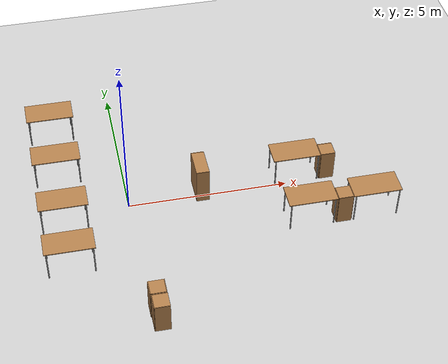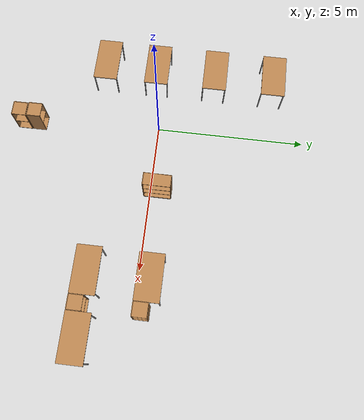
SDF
<sdf version="1.6">
 <world name="default">
  <model name="ground_plane">
   <static>1</static>
   <link name="link">
    <collision name="collision">
     <geometry><plane><normal>0 0 1</normal><size>100 100</size></plane></geometry>
     <surface><friction><ode><mu>100</mu><mu2>50</mu2></ode></friction></surface>
    </collision>
    <visual name="visual">
     <cast_shadows>0</cast_shadows>
     <geometry><plane><normal>0 0 1</normal><size>100 100</size></plane></geometry>
     <material>
      <script><uri>file://media/materials/scripts/gazebo.material</uri><name>Gazebo/Grey</name></script>
     </material>
    </visual>
   </link>
  </model>
  <model name="table_clone">
   <static>1</static>
   <link name="link">
    <collision name="surface">
     <pose>0 0 1 0 -0 0</pose>
     <geometry><box><size>1.5 0.8 0.03</size></box></geometry>
     <surface><friction><ode><mu>0.6</mu><mu2>0.6</mu2></ode></friction></surface>
    </collision>
    <visual name="visual1">
     <pose>0 0 1 0 -0 0</pose>
     <geometry><box><size>1.5 0.8 0.03</size></box></geometry>
     <material>
      <script><uri>file://media/materials/scripts/gazebo.material</uri><name>Gazebo/Wood</name></script>
     </material>
    </visual>
    <collision name="front_left_leg">
     <pose>0.68 0.38 0.5 0 -0 0</pose>
     <geometry><cylinder><radius>0.02</radius><length>1</length></cylinder></geometry>
    </collision>
    <visual name="front_left_leg">
     <pose>0.68 0.38 0.5 0 -0 0</pose>
     <geometry><cylinder><radius>0.02</radius><length>1</length></cylinder></geometry>
     <material>
      <script><uri>file://media/materials/scripts/gazebo.material</uri><name>Gazebo/Grey</name></script>
     </material>
    </visual>
    <collision name="front_right_leg">
     <pose>0.68 -0.38 0.5 0 -0 0</pose>
     <geometry><cylinder><radius>0.02</radius><length>1</length></cylinder></geometry>
    </collision>
    <visual name="front_right_leg">
     <pose>0.68 -0.38 0.5 0 -0 0</pose>
     <geometry><cylinder><radius>0.02</radius><length>1</length></cylinder></geometry>
     <material>
      <script><uri>file://media/materials/scripts/gazebo.material</uri><name>Gazebo/Grey</name></script>
     </material>
    </visual>
    <collision name="back_right_leg">
     <pose>-0.68 -0.38 0.5 0 -0 0</pose>
     <geometry><cylinder><radius>0.02</radius><length>1</length></cylinder></geometry>
    </collision>
    <visual name="back_right_leg">
     <pose>-0.68 -0.38 0.5 0 -0 0</pose>
     <geometry><cylinder><radius>0.02</radius><length>1</length></cylinder></geometry>
     <material>
      <script><uri>file://media/materials/scripts/gazebo.material</uri><name>Gazebo/Grey</name></script>
     </material>
    </visual>
    <collision name="back_left_leg">
     <pose>-0.68 0.38 0.5 0 -0 0</pose>
     <geometry><cylinder><radius>0.02</radius><length>1</length></cylinder></geometry>
    </collision>
    <visual name="back_left_leg">
     <pose>-0.68 0.38 0.5 0 -0 0</pose>
     <geometry><cylinder><radius>0.02</radius><length>1</length></cylinder></geometry>
     <material>
      <script><uri>file://media/materials/scripts/gazebo.material</uri><name>Gazebo/Grey</name></script>
     </material>
    </visual>
   </link>
   <pose>-2 1.75 0 0 -0 0</pose>
  </model>
  <model name="table_clone_0">
   <static>1</static>
   <link name="link">
    <collision name="surface">
     <pose>0 0 1 0 -0 0</pose>
     <geometry><box><size>1.5 0.8 0.03</size></box></geometry>
     <surface><friction><ode><mu>0.6</mu><mu2>0.6</mu2></ode></friction></surface>
    </collision>
    <visual name="visual1">
     <pose>0 0 1 0 -0 0</pose>
     <geometry><box><size>1.5 0.8 0.03</size></box></geometry>
     <material>
      <script><uri>file://media/materials/scripts/gazebo.material</uri><name>Gazebo/Wood</name></script>
     </material>
    </visual>
    <collision name="front_left_leg">
     <pose>0.68 0.38 0.5 0 -0 0</pose>
     <geometry><cylinder><radius>0.02</radius><length>1</length></cylinder></geometry>
    </collision>
    <visual name="front_left_leg">
     <pose>0.68 0.38 0.5 0 -0 0</pose>
     <geometry><cylinder><radius>0.02</radius><length>1</length></cylinder></geometry>
     <material>
      <script><uri>file://media/materials/scripts/gazebo.material</uri><name>Gazebo/Grey</name></script>
     </material>
    </visual>
    <collision name="front_right_leg">
     <pose>0.68 -0.38 0.5 0 -0 0</pose>
     <geometry><cylinder><radius>0.02</radius><length>1</length></cylinder></geometry>
    </collision>
    <visual name="front_right_leg">
     <pose>0.68 -0.38 0.5 0 -0 0</pose>
     <geometry><cylinder><radius>0.02</radius><length>1</length></cylinder></geometry>
     <material>
      <script><uri>file://media/materials/scripts/gazebo.material</uri><name>Gazebo/Grey</name></script>
     </material>
    </visual>
    <collision name="back_right_leg">
     <pose>-0.68 -0.38 0.5 0 -0 0</pose>
     <geometry><cylinder><radius>0.02</radius><length>1</length></cylinder></geometry>
    </collision>
    <visual name="back_right_leg">
     <pose>-0.68 -0.38 0.5 0 -0 0</pose>
     <geometry><cylinder><radius>0.02</radius><length>1</length></cylinder></geometry>
     <material>
      <script><uri>file://media/materials/scripts/gazebo.material</uri><name>Gazebo/Grey</name></script>
     </material>
    </visual>
    <collision name="back_left_leg">
     <pose>-0.68 0.38 0.5 0 -0 0</pose>
     <geometry><cylinder><radius>0.02</radius><length>1</length></cylinder></geometry>
    </collision>
    <visual name="back_left_leg">
     <pose>-0.68 0.38 0.5 0 -0 0</pose>
     <geometry><cylinder><radius>0.02</radius><length>1</length></cylinder></geometry>
     <material>
      <script><uri>file://media/materials/scripts/gazebo.material</uri><name>Gazebo/Grey</name></script>
     </material>
    </visual>
   </link>
   <pose>-2 3.75 0 0 -0 0</pose>
  </model>
  <model name="table_clone_1">
   <static>1</static>
   <link name="link">
    <collision name="surface">
     <pose>0 0 1 0 -0 0</pose>
     <geometry><box><size>1.5 0.8 0.03</size></box></geometry>
     <surface><friction><ode><mu>0.6</mu><mu2>0.6</mu2></ode></friction></surface>
    </collision>
    <visual name="visual1">
     <pose>0 0 1 0 -0 0</pose>
     <geometry><box><size>1.5 0.8 0.03</size></box></geometry>
     <material>
      <script><uri>file://media/materials/scripts/gazebo.material</uri><name>Gazebo/Wood</name></script>
     </material>
    </visual>
    <collision name="front_left_leg">
     <pose>0.68 0.38 0.5 0 -0 0</pose>
     <geometry><cylinder><radius>0.02</radius><length>1</length></cylinder></geometry>
    </collision>
    <visual name="front_left_leg">
     <pose>0.68 0.38 0.5 0 -0 0</pose>
     <geometry><cylinder><radius>0.02</radius><length>1</length></cylinder></geometry>
     <material>
      <script><uri>file://media/materials/scripts/gazebo.material</uri><name>Gazebo/Grey</name></script>
     </material>
    </visual>
    <collision name="front_right_leg">
     <pose>0.68 -0.38 0.5 0 -0 0</pose>
     <geometry><cylinder><radius>0.02</radius><length>1</length></cylinder></geometry>
    </collision>
    <visual name="front_right_leg">
     <pose>0.68 -0.38 0.5 0 -0 0</pose>
     <geometry><cylinder><radius>0.02</radius><length>1</length></cylinder></geometry>
     <material>
      <script><uri>file://media/materials/scripts/gazebo.material</uri><name>Gazebo/Grey</name></script>
     </material>
    </visual>
    <collision name="back_right_leg">
     <pose>-0.68 -0.38 0.5 0 -0 0</pose>
     <geometry><cylinder><radius>0.02</radius><length>1</length></cylinder></geometry>
    </collision>
    <visual name="back_right_leg">
     <pose>-0.68 -0.38 0.5 0 -0 0</pose>
     <geometry><cylinder><radius>0.02</radius><length>1</length></cylinder></geometry>
     <material>
      <script><uri>file://media/materials/scripts/gazebo.material</uri><name>Gazebo/Grey</name></script>
     </material>
    </visual>
    <collision name="back_left_leg">
     <pose>-0.68 0.38 0.5 0 -0 0</pose>
     <geometry><cylinder><radius>0.02</radius><length>1</length></cylinder></geometry>
    </collision>
    <visual name="back_left_leg">
     <pose>-0.68 0.38 0.5 0 -0 0</pose>
     <geometry><cylinder><radius>0.02</radius><length>1</length></cylinder></geometry>
     <material>
      <script><uri>file://media/materials/scripts/gazebo.material</uri><name>Gazebo/Grey</name></script>
     </material>
    </visual>
   </link>
   <pose>-2 -2 0 0 -0 0</pose>
  </model>
  <model name="table_clone_2">
   <static>1</static>
   <link name="link">
    <collision name="surface">
     <pose>0 0 1 0 -0 0</pose>
     <geometry><box><size>1.5 0.8 0.03</size></box></geometry>
     <surface><friction><ode><mu>0.6</mu><mu2>0.6</mu2></ode></friction></surface>
    </collision>
    <visual name="visual1">
     <pose>0 0 1 0 -0 0</pose>
     <geometry><box><size>1.5 0.8 0.03</size></box></geometry>
     <material>
      <script><uri>file://media/materials/scripts/gazebo.material</uri><name>Gazebo/Wood</name></script>
     </material>
    </visual>
    <collision name="front_left_leg">
     <pose>0.68 0.38 0.5 0 -0 0</pose>
     <geometry><cylinder><radius>0.02</radius><length>1</length></cylinder></geometry>
    </collision>
    <visual name="front_left_leg">
     <pose>0.68 0.38 0.5 0 -0 0</pose>
     <geometry><cylinder><radius>0.02</radius><length>1</length></cylinder></geometry>
     <material>
      <script><uri>file://media/materials/scripts/gazebo.material</uri><name>Gazebo/Grey</name></script>
     </material>
    </visual>
    <collision name="front_right_leg">
     <pose>0.68 -0.38 0.5 0 -0 0</pose>
     <geometry><cylinder><radius>0.02</radius><length>1</length></cylinder></geometry>
    </collision>
    <visual name="front_right_leg">
     <pose>0.68 -0.38 0.5 0 -0 0</pose>
     <geometry><cylinder><radius>0.02</radius><length>1</length></cylinder></geometry>
     <material>
      <script><uri>file://media/materials/scripts/gazebo.material</uri><name>Gazebo/Grey</name></script>
     </material>
    </visual>
    <collision name="back_right_leg">
     <pose>-0.68 -0.38 0.5 0 -0 0</pose>
     <geometry><cylinder><radius>0.02</radius><length>1</length></cylinder></geometry>
    </collision>
    <visual name="back_right_leg">
     <pose>-0.68 -0.38 0.5 0 -0 0</pose>
     <geometry><cylinder><radius>0.02</radius><length>1</length></cylinder></geometry>
     <material>
      <script><uri>file://media/materials/scripts/gazebo.material</uri><name>Gazebo/Grey</name></script>
     </material>
    </visual>
    <collision name="back_left_leg">
     <pose>-0.68 0.38 0.5 0 -0 0</pose>
     <geometry><cylinder><radius>0.02</radius><length>1</length></cylinder></geometry>
    </collision>
    <visual name="back_left_leg">
     <pose>-0.68 0.38 0.5 0 -0 0</pose>
     <geometry><cylinder><radius>0.02</radius><length>1</length></cylinder></geometry>
     <material>
      <script><uri>file://media/materials/scripts/gazebo.material</uri><name>Gazebo/Grey</name></script>
     </material>
    </visual>
   </link>
   <pose>-2 -0.25 0 0 -0 0</pose>
  </model>
  <model name="bookshelf_clone">
   <static>1</static>
   <link name="link">
    <inertial><mass>1</mass></inertial>
    <collision name="back">
     <pose>0 0.005 0.6 0 -0 0</pose>
     <geometry><box><size>0.9 0.01 1.2</size></box></geometry>
    </collision>
    <visual name="visual1">
     <pose>0 0.005 0.6 0 -0 0</pose>
     <geometry><box><size>0.9 0.01 1.2</size></box></geometry>
     <material>
      <script><uri>file://media/materials/scripts/gazebo.material</uri><name>Gazebo/Wood</name></script>
     </material>
    </visual>
    <collision name="left_side">
     <pose>0.45 -0.195 0.6 0 -0 0</pose>
     <geometry><box><size>0.02 0.4 1.2</size></box></geometry>
    </collision>
    <visual name="visual2">
     <pose>0.45 -0.195 0.6 0 -0 0</pose>
     <geometry><box><size>0.02 0.4 1.2</size></box></geometry>
     <material>
      <script><uri>file://media/materials/scripts/gazebo.material</uri><name>Gazebo/Wood</name></script>
     </material>
    </visual>
    <collision name="right_side">
     <pose>-0.45 -0.195 0.6 0 -0 0</pose>
     <geometry><box><size>0.02 0.4 1.2</size></box></geometry>
    </collision>
    <visual name="visual3">
     <pose>-0.45 -0.195 0.6 0 -0 0</pose>
     <geometry><box><size>0.02 0.4 1.2</size></box></geometry>
     <material>
      <script><uri>file://media/materials/scripts/gazebo.material</uri><name>Gazebo/Wood</name></script>
     </material>
    </visual>
    <collision name="bottom">
     <pose>0 -0.195 0.03 0 -0 0</pose>
     <geometry><box><size>0.88 0.4 0.06</size></box></geometry>
    </collision>
    <visual name="visual4">
     <pose>0 -0.195 0.03 0 -0 0</pose>
     <geometry><box><size>0.88 0.4 0.06</size></box></geometry>
     <material>
      <script><uri>file://media/materials/scripts/gazebo.material</uri><name>Gazebo/Wood</name></script>
     </material>
    </visual>
    <collision name="top">
     <pose>0 -0.195 1.19 0 -0 0</pose>
     <geometry><box><size>0.88 0.4 0.02</size></box></geometry>
    </collision>
    <visual name="visual5">
     <pose>0 -0.195 1.19 0 -0 0</pose>
     <geometry><box><size>0.88 0.4 0.02</size></box></geometry>
     <material>
      <script><uri>file://media/materials/scripts/gazebo.material</uri><name>Gazebo/Wood</name></script>
     </material>
    </visual>
    <collision name="low_shelf">
     <pose>0 -0.195 0.43 0 -0 0</pose>
     <geometry><box><size>0.88 0.4 0.02</size></box></geometry>
    </collision>
    <visual name="visual6">
     <pose>0 -0.195 0.43 0 -0 0</pose>
     <geometry><box><size>0.88 0.4 0.02</size></box></geometry>
     <material>
      <script><uri>file://media/materials/scripts/gazebo.material</uri><name>Gazebo/Wood</name></script>
     </material>
    </visual>
    <collision name="high_shelf">
     <pose>0 -0.195 0.8 0 -0 0</pose>
     <geometry><box><size>0.88 0.4 0.02</size></box></geometry>
    </collision>
    <visual name="visual7">
     <pose>0 -0.195 0.8 0 -0 0</pose>
     <geometry><box><size>0.88 0.4 0.02</size></box></geometry>
     <material>
      <script><uri>file://media/materials/scripts/gazebo.material</uri><name>Gazebo/Wood</name></script>
     </material>
    </visual>
   </link>
   <pose>2.11123 0.253386 0 0 -0 1.5707</pose>
  </model>
  <model name="table">
   <static>1</static>
   <link name="link">
    <collision name="surface">
     <pose>0 0 1 0 -0 0</pose>
     <geometry><box><size>1.5 0.8 0.03</size></box></geometry>
     <surface><friction><ode><mu>0.6</mu><mu2>0.6</mu2></ode></friction></surface>
    </collision>
    <visual name="visual1">
     <pose>0 0 1 0 -0 0</pose>
     <geometry><box><size>1.5 0.8 0.03</size></box></geometry>
     <material>
      <script><uri>file://media/materials/scripts/gazebo.material</uri><name>Gazebo/Wood</name></script>
     </material>
    </visual>
    <collision name="front_left_leg">
     <pose>0.68 0.38 0.5 0 -0 0</pose>
     <geometry><cylinder><radius>0.02</radius><length>1</length></cylinder></geometry>
    </collision>
    <visual name="front_left_leg">
     <pose>0.68 0.38 0.5 0 -0 0</pose>
     <geometry><cylinder><radius>0.02</radius><length>1</length></cylinder></geometry>
     <material>
      <script><uri>file://media/materials/scripts/gazebo.material</uri><name>Gazebo/Grey</name></script>
     </material>
    </visual>
    <collision name="front_right_leg">
     <pose>0.68 -0.38 0.5 0 -0 0</pose>
     <geometry><cylinder><radius>0.02</radius><length>1</length></cylinder></geometry>
    </collision>
    <visual name="front_right_leg">
     <pose>0.68 -0.38 0.5 0 -0 0</pose>
     <geometry><cylinder><radius>0.02</radius><length>1</length></cylinder></geometry>
     <material>
      <script><uri>file://media/materials/scripts/gazebo.material</uri><name>Gazebo/Grey</name></script>
     </material>
    </visual>
    <collision name="back_right_leg">
     <pose>-0.68 -0.38 0.5 0 -0 0</pose>
     <geometry><cylinder><radius>0.02</radius><length>1</length></cylinder></geometry>
    </collision>
    <visual name="back_right_leg">
     <pose>-0.68 -0.38 0.5 0 -0 0</pose>
     <geometry><cylinder><radius>0.02</radius><length>1</length></cylinder></geometry>
     <material>
      <script><uri>file://media/materials/scripts/gazebo.material</uri><name>Gazebo/Grey</name></script>
     </material>
    </visual>
    <collision name="back_left_leg">
     <pose>-0.68 0.38 0.5 0 -0 0</pose>
     <geometry><cylinder><radius>0.02</radius><length>1</length></cylinder></geometry>
    </collision>
    <visual name="back_left_leg">
     <pose>-0.68 0.38 0.5 0 -0 0</pose>
     <geometry><cylinder><radius>0.02</radius><length>1</length></cylinder></geometry>
     <material>
      <script><uri>file://media/materials/scripts/gazebo.material</uri><name>Gazebo/Grey</name></script>
     </material>
    </visual>
   </link>
   <pose>5.32861 -1.51979 0 0 -0 0</pose>
  </model>
  <model name="cabinet">
   <static>1</static>
   <link name="cabinet_bottom_plate">
    <inertial>
     <pose>0 0 -1 0 -0 0</pose>
     <inertia><ixx>2.05</ixx><ixy>0</ixy><ixz>0</ixz><iyy>2.05</iyy><iyz>0</iyz><izz>2.05</izz></inertia>
     <mass>25</mass>
    </inertial>
    <collision name="cabinet_bottom_plate_geom">
     <pose>0 0 0.01 0 -0 0</pose>
     <geometry><box><size>0.45 0.45 0.02</size></box></geometry>
    </collision>
    <visual name="cabinet_bottom_plate_geom_visual">
     <pose>0 0 0.01 0 -0 0</pose>
     <geometry><box><size>0.45 0.45 0.02</size></box></geometry>
     <material>
      <script><uri>file://media/materials/scripts/gazebo.material</uri><name>Gazebo/Wood</name></script>
     </material>
    </visual>
    <collision name="cabinet_bottom_plate_geom_cabinet_back_plate">
     <pose>0.235 0 0.51 0 -0 0</pose>
     <geometry><box><size>0.02 0.45 1.02</size></box></geometry>
    </collision>
    <visual name="cabinet_bottom_plate_geom_cabinet_back_plate_visual">
     <pose>0.235 0 0.51 0 -0 0</pose>
     <geometry><box><size>0.02 0.45 1.02</size></box></geometry>
     <material>
      <script><uri>file://media/materials/scripts/gazebo.material</uri><name>Gazebo/Wood</name></script>
     </material>
    </visual>
    <collision name="cabinet_bottom_plate_geom_cabinet_left_plate">
     <pose>0 0.235 0.51 0 -0 0</pose>
     <geometry><box><size>0.45 0.02 1.02</size></box></geometry>
    </collision>
    <visual name="cabinet_bottom_plate_geom_cabinet_left_plate_visual">
     <pose>0 0.235 0.51 0 -0 0</pose>
     <geometry><box><size>0.45 0.02 1.02</size></box></geometry>
     <material>
      <script><uri>file://media/materials/scripts/gazebo.material</uri><name>Gazebo/Wood</name></script>
     </material>
    </visual>
    <collision name="cabinet_bottom_plate_geom_cabinet_middle_plate">
     <pose>0 0 0.51 0 -0 0</pose>
     <geometry><box><size>0.45 0.45 0.02</size></box></geometry>
    </collision>
    <visual name="cabinet_bottom_plate_geom_cabinet_middle_plate_visual">
     <pose>0 0 0.51 0 -0 0</pose>
     <geometry><box><size>0.45 0.45 0.02</size></box></geometry>
     <material>
      <script><uri>file://media/materials/scripts/gazebo.material</uri><name>Gazebo/Wood</name></script>
     </material>
    </visual>
    <collision name="cabinet_bottom_plate_geom_cabinet_right_plate">
     <pose>0 -0.235 0.51 0 -0 0</pose>
     <geometry><box><size>0.45 0.02 1.02</size></box></geometry>
    </collision>
    <visual name="cabinet_bottom_plate_geom_cabinet_right_plate_visual">
     <pose>0 -0.235 0.51 0 -0 0</pose>
     <geometry><box><size>0.45 0.02 1.02</size></box></geometry>
     <material>
      <script><uri>file://media/materials/scripts/gazebo.material</uri><name>Gazebo/Wood</name></script>
     </material>
    </visual>
    <collision name="cabinet_bottom_plate_geom_cabinet_top_plate">
     <pose>0 0 1.01 0 -0 0</pose>
     <geometry><box><size>0.45 0.45 0.02</size></box></geometry>
    </collision>
    <visual name="cabinet_bottom_plate_geom_cabinet_top_plate_visual">
     <pose>0 0 1.01 0 -0 0</pose>
     <geometry><box><size>0.45 0.45 0.02</size></box></geometry>
     <material>
      <script><uri>file://media/materials/scripts/gazebo.material</uri><name>Gazebo/Wood</name></script>
     </material>
    </visual>
   </link>
   <pose>6.3259 -1.67456 0 0 0 -1.5707</pose>
  </model>
  <model name="table_1">
   <static>1</static>
   <link name="link">
    <collision name="surface">
     <pose>0 0 1 0 -0 0</pose>
     <geometry><box><size>1.5 0.8 0.03</size></box></geometry>
     <surface><friction><ode><mu>0.6</mu><mu2>0.6</mu2></ode></friction></surface>
    </collision>
    <visual name="visual1">
     <pose>0 0 1 0 -0 0</pose>
     <geometry><box><size>1.5 0.8 0.03</size></box></geometry>
     <material>
      <script><uri>file://media/materials/scripts/gazebo.material</uri><name>Gazebo/Wood</name></script>
     </material>
    </visual>
    <collision name="front_left_leg">
     <pose>0.68 0.38 0.5 0 -0 0</pose>
     <geometry><cylinder><radius>0.02</radius><length>1</length></cylinder></geometry>
    </collision>
    <visual name="front_left_leg">
     <pose>0.68 0.38 0.5 0 -0 0</pose>
     <geometry><cylinder><radius>0.02</radius><length>1</length></cylinder></geometry>
     <material>
      <script><uri>file://media/materials/scripts/gazebo.material</uri><name>Gazebo/Grey</name></script>
     </material>
    </visual>
    <collision name="front_right_leg">
     <pose>0.68 -0.38 0.5 0 -0 0</pose>
     <geometry><cylinder><radius>0.02</radius><length>1</length></cylinder></geometry>
    </collision>
    <visual name="front_right_leg">
     <pose>0.68 -0.38 0.5 0 -0 0</pose>
     <geometry><cylinder><radius>0.02</radius><length>1</length></cylinder></geometry>
     <material>
      <script><uri>file://media/materials/scripts/gazebo.material</uri><name>Gazebo/Grey</name></script>
     </material>
    </visual>
    <collision name="back_right_leg">
     <pose>-0.68 -0.38 0.5 0 -0 0</pose>
     <geometry><cylinder><radius>0.02</radius><length>1</length></cylinder></geometry>
    </collision>
    <visual name="back_right_leg">
     <pose>-0.68 -0.38 0.5 0 -0 0</pose>
     <geometry><cylinder><radius>0.02</radius><length>1</length></cylinder></geometry>
     <material>
      <script><uri>file://media/materials/scripts/gazebo.material</uri><name>Gazebo/Grey</name></script>
     </material>
    </visual>
    <collision name="back_left_leg">
     <pose>-0.68 0.38 0.5 0 -0 0</pose>
     <geometry><cylinder><radius>0.02</radius><length>1</length></cylinder></geometry>
    </collision>
    <visual name="back_left_leg">
     <pose>-0.68 0.38 0.5 0 -0 0</pose>
     <geometry><cylinder><radius>0.02</radius><length>1</length></cylinder></geometry>
     <material>
      <script><uri>file://media/materials/scripts/gazebo.material</uri><name>Gazebo/Grey</name></script>
     </material>
    </visual>
   </link>
   <pose>7.32243 -1.52191 0 0 -0 0</pose>
  </model>
  <model name="table_2">
   <static>1</static>
   <link name="link">
    <collision name="surface">
     <pose>0 0 1 0 -0 0</pose>
     <geometry><box><size>1.5 0.8 0.03</size></box></geometry>
     <surface><friction><ode><mu>0.6</mu><mu2>0.6</mu2></ode></friction></surface>
    </collision>
    <visual name="visual1">
     <pose>0 0 1 0 -0 0</pose>
     <geometry><box><size>1.5 0.8 0.03</size></box></geometry>
     <material>
      <script><uri>file://media/materials/scripts/gazebo.material</uri><name>Gazebo/Wood</name></script>
     </material>
    </visual>
    <collision name="front_left_leg">
     <pose>0.68 0.38 0.5 0 -0 0</pose>
     <geometry><cylinder><radius>0.02</radius><length>1</length></cylinder></geometry>
    </collision>
    <visual name="front_left_leg">
     <pose>0.68 0.38 0.5 0 -0 0</pose>
     <geometry><cylinder><radius>0.02</radius><length>1</length></cylinder></geometry>
     <material>
      <script><uri>file://media/materials/scripts/gazebo.material</uri><name>Gazebo/Grey</name></script>
     </material>
    </visual>
    <collision name="front_right_leg">
     <pose>0.68 -0.38 0.5 0 -0 0</pose>
     <geometry><cylinder><radius>0.02</radius><length>1</length></cylinder></geometry>
    </collision>
    <visual name="front_right_leg">
     <pose>0.68 -0.38 0.5 0 -0 0</pose>
     <geometry><cylinder><radius>0.02</radius><length>1</length></cylinder></geometry>
     <material>
      <script><uri>file://media/materials/scripts/gazebo.material</uri><name>Gazebo/Grey</name></script>
     </material>
    </visual>
    <collision name="back_right_leg">
     <pose>-0.68 -0.38 0.5 0 -0 0</pose>
     <geometry><cylinder><radius>0.02</radius><length>1</length></cylinder></geometry>
    </collision>
    <visual name="back_right_leg">
     <pose>-0.68 -0.38 0.5 0 -0 0</pose>
     <geometry><cylinder><radius>0.02</radius><length>1</length></cylinder></geometry>
     <material>
      <script><uri>file://media/materials/scripts/gazebo.material</uri><name>Gazebo/Grey</name></script>
     </material>
    </visual>
    <collision name="back_left_leg">
     <pose>-0.68 0.38 0.5 0 -0 0</pose>
     <geometry><cylinder><radius>0.02</radius><length>1</length></cylinder></geometry>
    </collision>
    <visual name="back_left_leg">
     <pose>-0.68 0.38 0.5 0 -0 0</pose>
     <geometry><cylinder><radius>0.02</radius><length>1</length></cylinder></geometry>
     <material>
      <script><uri>file://media/materials/scripts/gazebo.material</uri><name>Gazebo/Grey</name></script>
     </material>
    </visual>
   </link>
   <pose>5.33631 0.40994 0 0 -0 0</pose>
  </model>
  <model name="cabinet_0">
   <static>1</static>
   <link name="cabinet_bottom_plate">
    <inertial>
     <pose>0 0 -1 0 -0 0</pose>
     <inertia><ixx>2.05</ixx><ixy>0</ixy><ixz>0</ixz><iyy>2.05</iyy><iyz>0</iyz><izz>2.05</izz></inertia>
     <mass>25</mass>
    </inertial>
    <collision name="cabinet_bottom_plate_geom">
     <pose>0 0 0.01 0 -0 0</pose>
     <geometry><box><size>0.45 0.45 0.02</size></box></geometry>
    </collision>
    <visual name="cabinet_bottom_plate_geom_visual">
     <pose>0 0 0.01 0 -0 0</pose>
     <geometry><box><size>0.45 0.45 0.02</size></box></geometry>
     <material>
      <script><uri>file://media/materials/scripts/gazebo.material</uri><name>Gazebo/Wood</name></script>
     </material>
    </visual>
    <collision name="cabinet_bottom_plate_geom_cabinet_back_plate">
     <pose>0.235 0 0.51 0 -0 0</pose>
     <geometry><box><size>0.02 0.45 1.02</size></box></geometry>
    </collision>
    <visual name="cabinet_bottom_plate_geom_cabinet_back_plate_visual">
     <pose>0.235 0 0.51 0 -0 0</pose>
     <geometry><box><size>0.02 0.45 1.02</size></box></geometry>
     <material>
      <script><uri>file://media/materials/scripts/gazebo.material</uri><name>Gazebo/Wood</name></script>
     </material>
    </visual>
    <collision name="cabinet_bottom_plate_geom_cabinet_left_plate">
     <pose>0 0.235 0.51 0 -0 0</pose>
     <geometry><box><size>0.45 0.02 1.02</size></box></geometry>
    </collision>
    <visual name="cabinet_bottom_plate_geom_cabinet_left_plate_visual">
     <pose>0 0.235 0.51 0 -0 0</pose>
     <geometry><box><size>0.45 0.02 1.02</size></box></geometry>
     <material>
      <script><uri>file://media/materials/scripts/gazebo.material</uri><name>Gazebo/Wood</name></script>
     </material>
    </visual>
    <collision name="cabinet_bottom_plate_geom_cabinet_middle_plate">
     <pose>0 0 0.51 0 -0 0</pose>
     <geometry><box><size>0.45 0.45 0.02</size></box></geometry>
    </collision>
    <visual name="cabinet_bottom_plate_geom_cabinet_middle_plate_visual">
     <pose>0 0 0.51 0 -0 0</pose>
     <geometry><box><size>0.45 0.45 0.02</size></box></geometry>
     <material>
      <script><uri>file://media/materials/scripts/gazebo.material</uri><name>Gazebo/Wood</name></script>
     </material>
    </visual>
    <collision name="cabinet_bottom_plate_geom_cabinet_right_plate">
     <pose>0 -0.235 0.51 0 -0 0</pose>
     <geometry><box><size>0.45 0.02 1.02</size></box></geometry>
    </collision>
    <visual name="cabinet_bottom_plate_geom_cabinet_right_plate_visual">
     <pose>0 -0.235 0.51 0 -0 0</pose>
     <geometry><box><size>0.45 0.02 1.02</size></box></geometry>
     <material>
      <script><uri>file://media/materials/scripts/gazebo.material</uri><name>Gazebo/Wood</name></script>
     </material>
    </visual>
    <collision name="cabinet_bottom_plate_geom_cabinet_top_plate">
     <pose>0 0 1.01 0 -0 0</pose>
     <geometry><box><size>0.45 0.45 0.02</size></box></geometry>
    </collision>
    <visual name="cabinet_bottom_plate_geom_cabinet_top_plate_visual">
     <pose>0 0 1.01 0 -0 0</pose>
     <geometry><box><size>0.45 0.45 0.02</size></box></geometry>
     <material>
      <script><uri>file://media/materials/scripts/gazebo.material</uri><name>Gazebo/Wood</name></script>
     </material>
    </visual>
   </link>
   <pose>6.3182 0.258315 0 0 0 -3.14159</pose>
  </model>
  <model name="cabinet_3">
   <static>1</static>
   <link name="cabinet_bottom_plate">
    <inertial>
     <pose>0 0 -1 0 -0 0</pose>
     <inertia><ixx>2.05</ixx><ixy>0</ixy><ixz>0</ixz><iyy>2.05</iyy><iyz>0</iyz><izz>2.05</izz></inertia>
     <mass>25</mass>
    </inertial>
    <collision name="cabinet_bottom_plate_geom">
     <pose>0 0 0.01 0 -0 0</pose>
     <geometry><box><size>0.45 0.45 0.02</size></box></geometry>
    </collision>
    <visual name="cabinet_bottom_plate_geom_visual">
     <pose>0 0 0.01 0 -0 0</pose>
     <geometry><box><size>0.45 0.45 0.02</size></box></geometry>
     <material>
      <script><uri>file://media/materials/scripts/gazebo.material</uri><name>Gazebo/Wood</name></script>
     </material>
    </visual>
    <collision name="cabinet_bottom_plate_geom_cabinet_back_plate">
     <pose>0.235 0 0.51 0 -0 0</pose>
     <geometry><box><size>0.02 0.45 1.02</size></box></geometry>
    </collision>
    <visual name="cabinet_bottom_plate_geom_cabinet_back_plate_visual">
     <pose>0.235 0 0.51 0 -0 0</pose>
     <geometry><box><size>0.02 0.45 1.02</size></box></geometry>
     <material>
      <script><uri>file://media/materials/scripts/gazebo.material</uri><name>Gazebo/Wood</name></script>
     </material>
    </visual>
    <collision name="cabinet_bottom_plate_geom_cabinet_left_plate">
     <pose>0 0.235 0.51 0 -0 0</pose>
     <geometry><box><size>0.45 0.02 1.02</size></box></geometry>
    </collision>
    <visual name="cabinet_bottom_plate_geom_cabinet_left_plate_visual">
     <pose>0 0.235 0.51 0 -0 0</pose>
     <geometry><box><size>0.45 0.02 1.02</size></box></geometry>
     <material>
      <script><uri>file://media/materials/scripts/gazebo.material</uri><name>Gazebo/Wood</name></script>
     </material>
    </visual>
    <collision name="cabinet_bottom_plate_geom_cabinet_middle_plate">
     <pose>0 0 0.51 0 -0 0</pose>
     <geometry><box><size>0.45 0.45 0.02</size></box></geometry>
    </collision>
    <visual name="cabinet_bottom_plate_geom_cabinet_middle_plate_visual">
     <pose>0 0 0.51 0 -0 0</pose>
     <geometry><box><size>0.45 0.45 0.02</size></box></geometry>
     <material>
      <script><uri>file://media/materials/scripts/gazebo.material</uri><name>Gazebo/Wood</name></script>
     </material>
    </visual>
    <collision name="cabinet_bottom_plate_geom_cabinet_right_plate">
     <pose>0 -0.235 0.51 0 -0 0</pose>
     <geometry><box><size>0.45 0.02 1.02</size></box></geometry>
    </collision>
    <visual name="cabinet_bottom_plate_geom_cabinet_right_plate_visual">
     <pose>0 -0.235 0.51 0 -0 0</pose>
     <geometry><box><size>0.45 0.02 1.02</size></box></geometry>
     <material>
      <script><uri>file://media/materials/scripts/gazebo.material</uri><name>Gazebo/Wood</name></script>
     </material>
    </visual>
    <collision name="cabinet_bottom_plate_geom_cabinet_top_plate">
     <pose>0 0 1.01 0 -0 0</pose>
     <geometry><box><size>0.45 0.45 0.02</size></box></geometry>
    </collision>
    <visual name="cabinet_bottom_plate_geom_cabinet_top_plate_visual">
     <pose>0 0 1.01 0 -0 0</pose>
     <geometry><box><size>0.45 0.45 0.02</size></box></geometry>
     <material>
      <script><uri>file://media/materials/scripts/gazebo.material</uri><name>Gazebo/Wood</name></script>
     </material>
    </visual>
   </link>
   <pose>0.239468 -4.65183 0 0 0 -3.14159</pose>
  </model>
  <model name="cabinet_4">
   <static>1</static>
   <link name="cabinet_bottom_plate">
    <inertial>
     <pose>0 0 -1 0 -0 0</pose>
     <inertia><ixx>2.05</ixx><ixy>0</ixy><ixz>0</ixz><iyy>2.05</iyy><iyz>0</iyz><izz>2.05</izz></inertia>
     <mass>25</mass>
    </inertial>
    <collision name="cabinet_bottom_plate_geom">
     <pose>0 0 0.01 0 -0 0</pose>
     <geometry><box><size>0.45 0.45 0.02</size></box></geometry>
    </collision>
    <visual name="cabinet_bottom_plate_geom_visual">
     <pose>0 0 0.01 0 -0 0</pose>
     <geometry><box><size>0.45 0.45 0.02</size></box></geometry>
     <material>
      <script><uri>file://media/materials/scripts/gazebo.material</uri><name>Gazebo/Wood</name></script>
     </material>
    </visual>
    <collision name="cabinet_bottom_plate_geom_cabinet_back_plate">
     <pose>0.235 0 0.51 0 -0 0</pose>
     <geometry><box><size>0.02 0.45 1.02</size></box></geometry>
    </collision>
    <visual name="cabinet_bottom_plate_geom_cabinet_back_plate_visual">
     <pose>0.235 0 0.51 0 -0 0</pose>
     <geometry><box><size>0.02 0.45 1.02</size></box></geometry>
     <material>
      <script><uri>file://media/materials/scripts/gazebo.material</uri><name>Gazebo/Wood</name></script>
     </material>
    </visual>
    <collision name="cabinet_bottom_plate_geom_cabinet_left_plate">
     <pose>0 0.235 0.51 0 -0 0</pose>
     <geometry><box><size>0.45 0.02 1.02</size></box></geometry>
    </collision>
    <visual name="cabinet_bottom_plate_geom_cabinet_left_plate_visual">
     <pose>0 0.235 0.51 0 -0 0</pose>
     <geometry><box><size>0.45 0.02 1.02</size></box></geometry>
     <material>
      <script><uri>file://media/materials/scripts/gazebo.material</uri><name>Gazebo/Wood</name></script>
     </material>
    </visual>
    <collision name="cabinet_bottom_plate_geom_cabinet_middle_plate">
     <pose>0 0 0.51 0 -0 0</pose>
     <geometry><box><size>0.45 0.45 0.02</size></box></geometry>
    </collision>
    <visual name="cabinet_bottom_plate_geom_cabinet_middle_plate_visual">
     <pose>0 0 0.51 0 -0 0</pose>
     <geometry><box><size>0.45 0.45 0.02</size></box></geometry>
     <material>
      <script><uri>file://media/materials/scripts/gazebo.material</uri><name>Gazebo/Wood</name></script>
     </material>
    </visual>
    <collision name="cabinet_bottom_plate_geom_cabinet_right_plate">
     <pose>0 -0.235 0.51 0 -0 0</pose>
     <geometry><box><size>0.45 0.02 1.02</size></box></geometry>
    </collision>
    <visual name="cabinet_bottom_plate_geom_cabinet_right_plate_visual">
     <pose>0 -0.235 0.51 0 -0 0</pose>
     <geometry><box><size>0.45 0.02 1.02</size></box></geometry>
     <material>
      <script><uri>file://media/materials/scripts/gazebo.material</uri><name>Gazebo/Wood</name></script>
     </material>
    </visual>
    <collision name="cabinet_bottom_plate_geom_cabinet_top_plate">
     <pose>0 0 1.01 0 -0 0</pose>
     <geometry><box><size>0.45 0.45 0.02</size></box></geometry>
    </collision>
    <visual name="cabinet_bottom_plate_geom_cabinet_top_plate_visual">
     <pose>0 0 1.01 0 -0 0</pose>
     <geometry><box><size>0.45 0.45 0.02</size></box></geometry>
     <material>
      <script><uri>file://media/materials/scripts/gazebo.material</uri><name>Gazebo/Wood</name></script>
     </material>
    </visual>
   </link>
   <pose>0.216094 -4.15231 0 0 0 -1.5707</pose>
  </model>
 </world>
</sdf>
